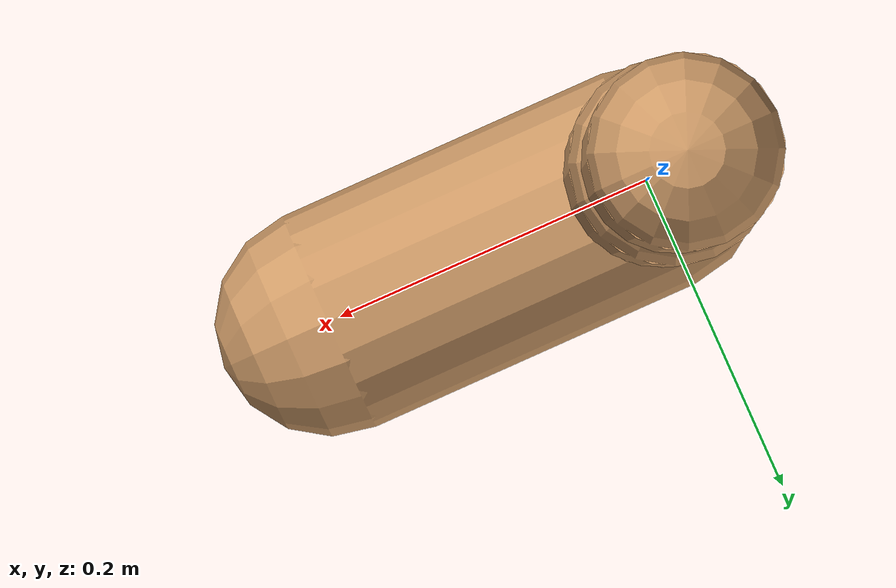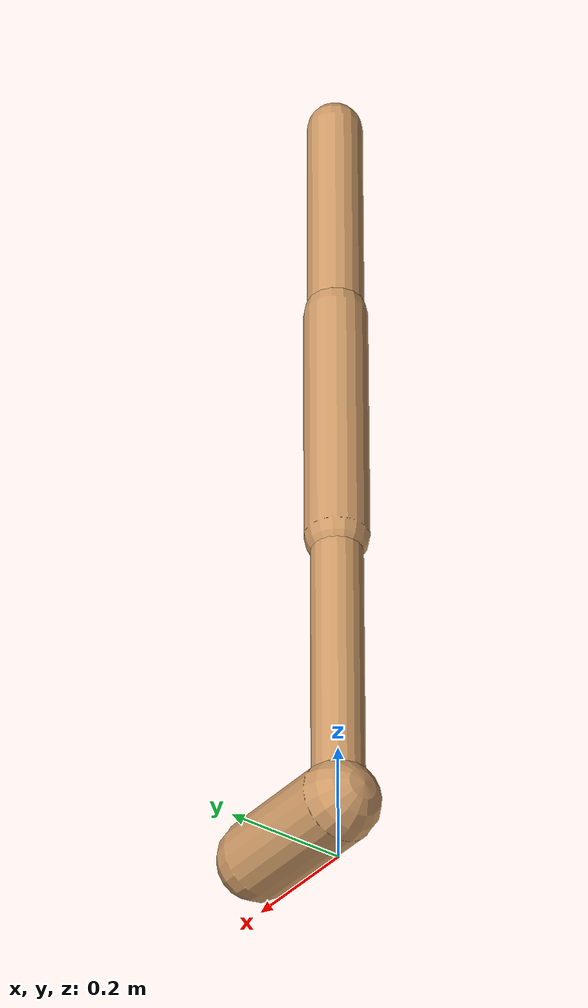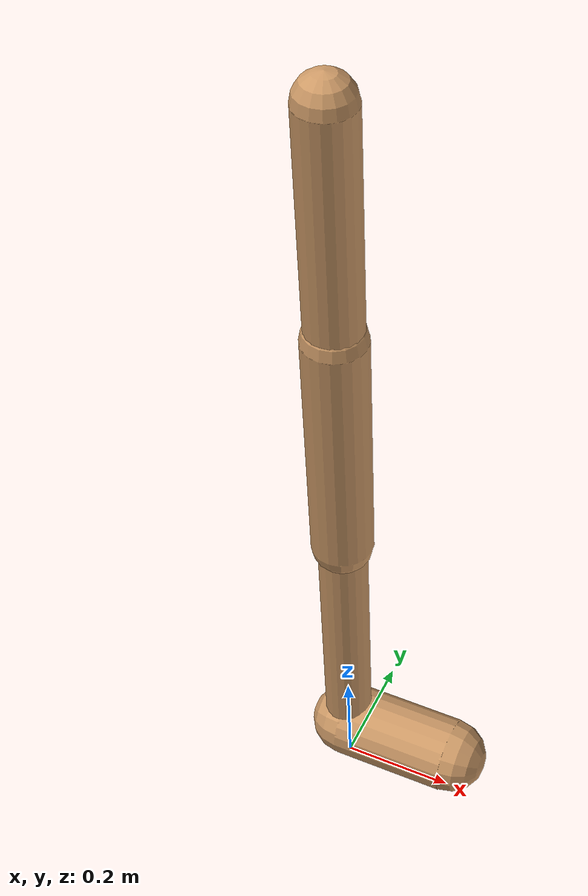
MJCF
<mujoco model="walker2d">
  <compiler angle="degree" coordinate="global" inertiafromgeom="true" />
  <default>
    <joint armature="0.01" damping=".1" limited="true" />
    <geom conaffinity="0" condim="3" contype="1" density="1000" friction="0.8 .1 .1" rgba="0.8 0.6 .4 1" />
  </default>
  <option integrator="RK4" timestep="0.002" />
  <worldbody>

    <body name="torso" pos="0 0 -0.0073855076522301236">
      <joint armature="0" axis="1 0 0" damping="0" limited="false" name="ignorex" pos="0 0 0" stiffness="0" type="slide" />
      <joint armature="0" axis="0 0 1" damping="0" limited="false" name="ignorez" pos="0 0 0" ref="1.25" stiffness="0" type="slide" />
      <joint armature="0" axis="0 1 0" damping="0" limited="false" name="ignorey" pos="0 0 0" stiffness="0" type="hinge" />
      <geom fromto="0 0 1.45 0 0 1.05" name="torso_geom" size="0.04713186547328884" type="capsule" />
      <body name="thigh">
        <joint axis="0 -1 0" name="thigh_joint" pos="0 0 1.05" range="-150 0" type="hinge" />
        <geom fromto="0.0 0.0 1.05 0.0 0.0 0.6034983983615827" name="thigh_geom" size="0.05318676829543126" type="capsule" />
        <body name="leg" pos="0.0 0.0 0.003498398361582722">
          <joint axis="0 -1 0" name="leg_joint" pos="0 0 0.6" range="-150 0" type="hinge" />
          <geom fromto="0.0 0.0 0.6 0.0 0.0 0.10388710929064744" name="leg_geom" size="0.042549414636345005" type="capsule" />
          <body name="foot" pos="0.0 0.0 0.0038871092906474364">
            <joint axis="0 -1 0" name="foot_joint" pos="0 0 0.1" range="-45 45" type="hinge" />
            <geom fromto="-0.0 0.0 0.1 0.20564660406540078 0.0 0.1" name="foot_geom" size="0.06776938728358006" type="capsule" />
          </body>
        </body>
      </body>

      <body name="thigh_left">
        <joint axis="0 -1 0" name="thigh_left_joint" pos="0 0 1.05" range="-150 0" type="hinge" />
        <geom fromto="0.0 0.0 1.05 0.0 0.0 0.6034983983615827" name="thigh_left_geom" rgba=".7 .3 .6 1" size="0.05318676829543126" type="capsule" />
        <body name="leg_left" pos="0.0 0.0 0.003498398361582722">
          <joint axis="0 -1 0" name="leg_left_joint" pos="0 0 0.6" range="-150 0" type="hinge" />
          <geom fromto="0.0 0.0 0.6 0.0 0.0 0.10388710929064744" name="leg_left_geom" rgba=".7 .3 .6 1" size="0.042549414636345005" type="capsule" />
          <body name="foot_left" pos="0.0 0.0 0.0038871092906474364">
            <joint axis="0 -1 0" name="foot_left_joint" pos="0 0 0.1" range="-45 45" type="hinge" />
            <geom fromto="-0.0 0.0 0.1 0.20564660406540078 0.0 0.1" name="foot_left_geom" rgba=".7 .3 .6 1" size="0.06776938728358006" type="capsule" />
          </body>
        </body>
      </body>
    </body>
  </worldbody>
  <actuator>

    <motor ctrllimited="true" ctrlrange="-1.0 1.0" gear="100" joint="thigh_joint" />
    <motor ctrllimited="true" ctrlrange="-1.0 1.0" gear="100" joint="leg_joint" />
    <motor ctrllimited="true" ctrlrange="-1.0 1.0" gear="100" joint="foot_joint" />
    <motor ctrllimited="true" ctrlrange="-1.0 1.0" gear="100" joint="thigh_left_joint" />
    <motor ctrllimited="true" ctrlrange="-1.0 1.0" gear="100" joint="leg_left_joint" />
    <motor ctrllimited="true" ctrlrange="-1.0 1.0" gear="100" joint="foot_left_joint" />

  </actuator>
</mujoco>
